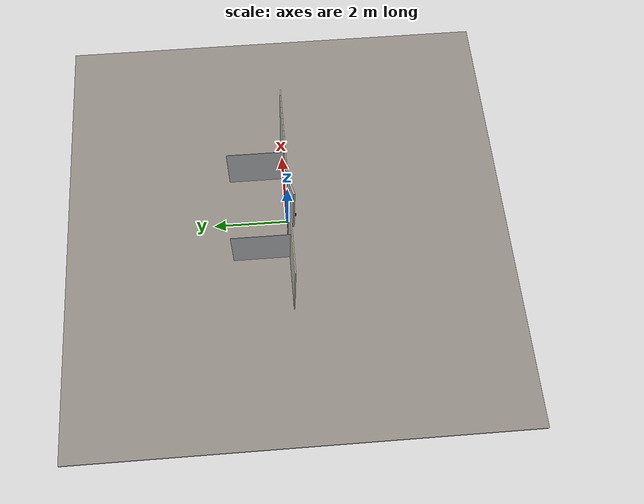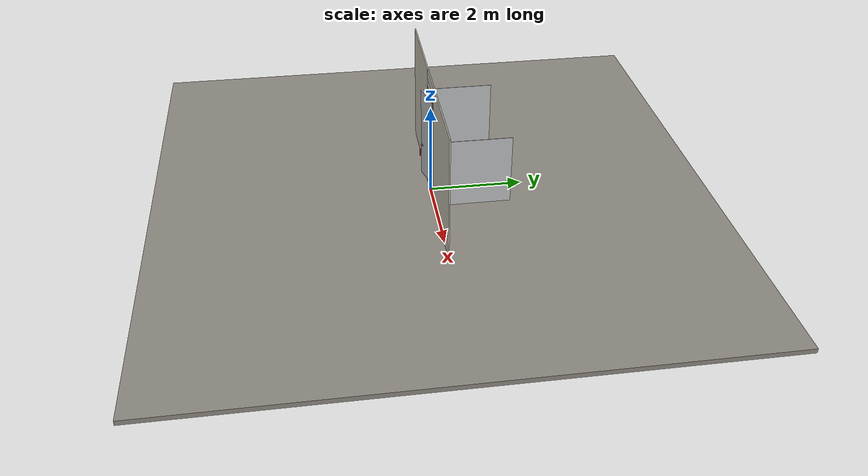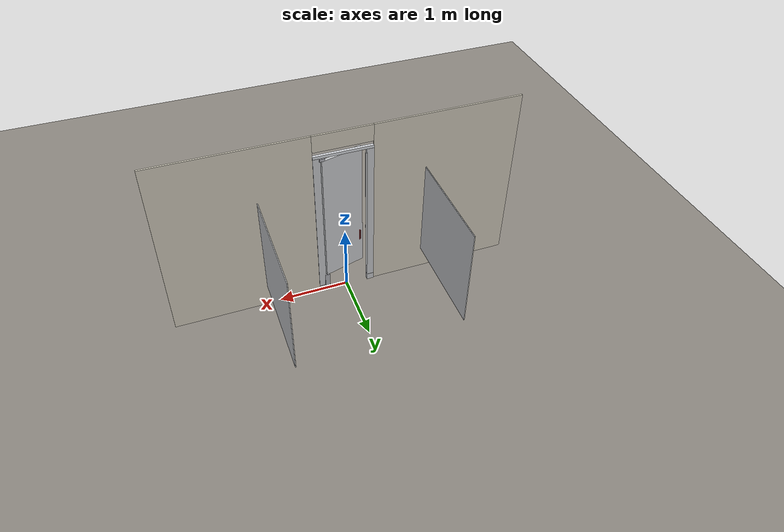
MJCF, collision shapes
<?xml version="1.0" ?>
<mujoco model="db0557_stall_full">
  <compiler angle="radian" meshdir="../../hardware" texturedir="../../textures" autolimits="true" inertiafromgeom="false"/>
  <option timestep="0.002" integrator="implicitfast" cone="elliptic" impratio="10" noslip_iterations="3">
    <flag multiccd="enable"/>
  </option>
  <size memory="16M"/>
  <default>
    <geom condim="4" solref="0.005 1" solimp="0.95 0.99 0.001"/>
    <joint solreflimit="0.005 1" solimplimit="0.95 0.99 0.001"/>
    <tendon solreflimit="0.005 1"/>
    <equality solref="0.002 1"/>
  </default>
  <visual>
    <headlight ambient="0.4 0.4 0.4" diffuse="0.7 0.7 0.7" specular="0.2 0.2 0.2"/>
    <quality shadowsize="4096"/>
    <map znear="0.01" zfar="60"/>
  </visual>
  <asset>
    <mesh name="coat_hook_d622d37ad0" file="coat_hook_d622d37ad0.obj"/>
    <mesh name="pull_1e5d69a91a" file="pull_1e5d69a91a.obj"/>
    <material name="mat_floor" rgba="0.55 0.53 0.5 1" specular="0.2" shininess="0.15" reflectance="0"/>
    <material name="mat_wall" rgba="0.78 0.76 0.7 1" specular="0.2" shininess="0.1" reflectance="0"/>
    <material name="mat_frame" rgba="0.75 0.76 0.77 1" specular="0.8" shininess="0.65" reflectance="0.4"/>
    <material name="mat_shoe" rgba="0.75 0.76 0.77 1" specular="0.8" shininess="0.65" reflectance="0.4"/>
    <material name="mat_headrail" rgba="0.8 0.81 0.83 1" specular="0.8" shininess="0.6" reflectance="0.4"/>
    <material name="mat_leaf" rgba="0.75 0.76 0.77 1" specular="0.8" shininess="0.65" reflectance="0.4"/>
    <material name="mat_op_stainless" rgba="0.75 0.76 0.77 1" specular="0.8" shininess="0.65" reflectance="0.4"/>
    <material name="mat_hinge" rgba="0.65 0.66 0.68 1" specular="0.74" shininess="0.5" reflectance="0.36"/>
    <texture name="skybox" type="skybox" builtin="gradient" rgb1="0.6 0.7 0.85" rgb2="0.9 0.92 0.95" width="256" height="256"/>
  </asset>
  <worldbody>
    <light name="sun" pos="1.5 -2.5 4" dir="-0.3 0.5 -0.8" directional="true" diffuse="0.8 0.8 0.8" specular="0.3 0.3 0.3" castshadow="true"/>
    <light name="fill" pos="-1.5 2.5 3" dir="0.3 -0.5 -0.7" directional="true" diffuse="0.35 0.35 0.4" castshadow="false"/>
    <camera name="robot_view" pos="0 -2.59375 1.77625" xyaxes="1 0 0 0 0.26963 0.962964" fovy="52"/>
    <camera name="far_view" pos="0 2.59375 1.77625" xyaxes="-1 0 0 0 -0.26963 0.962964" fovy="52"/>
    <camera name="iso" pos="-1.97125 -2.17875 2.19125" xyaxes="0.741536 -0.670913 0 0.242917 0.268487 0.932151" fovy="46"/>
    <camera name="detail_handle" pos="-0.047967 -0.882 1.13" xyaxes="0.97561 0.219512 0 -0.070934 0.315262 0.94635" fovy="38"/>
    <geom name="floor" type="box" size="6 6 0.05" pos="0 0 -0.05" material="mat_floor" group="0" contype="1" conaffinity="1" friction="0.8 0.005 0.0001" density="2400"/>
    <geom name="wall_left" type="box" size="1.0445 0.0125 1.35" pos="-1.4555 0 1.35" material="mat_wall" group="0" contype="1" conaffinity="1" friction="0.6 0.005 0.0001" density="800"/>
    <geom name="wall_right" type="box" size="1.0445 0.0125 1.35" pos="1.4555 0 1.35" material="mat_wall" group="0" contype="1" conaffinity="1" friction="0.6 0.005 0.0001" density="800"/>
    <geom name="wall_header" type="box" size="0.411 0.0125 0.125" pos="0 0 2.575" material="mat_wall" group="0" contype="1" conaffinity="1" friction="0.6 0.005 0.0001" density="800"/>
    <geom name="pilaster_l" type="box" size="0.05 0.022 1.125" pos="-0.361 0 1.225" material="mat_frame" group="0" contype="1" conaffinity="1" friction="0.6 0.005 0.0001" density="1400"/>
    <geom name="pilaster_shoe_l" type="box" size="0.05 0.027 0.05" pos="-0.361 0 0.05" material="mat_shoe" group="1" contype="0" conaffinity="0" density="7900"/>
    <geom name="pilaster_r" type="box" size="0.05 0.022 1.125" pos="0.361 0 1.225" material="mat_frame" group="0" contype="1" conaffinity="1" friction="0.6 0.005 0.0001" density="1400"/>
    <geom name="pilaster_shoe_r" type="box" size="0.05 0.027 0.05" pos="0.361 0 0.05" material="mat_shoe" group="1" contype="0" conaffinity="0" density="7900"/>
    <geom name="headrail" type="box" size="0.411 0.02 0.02" pos="0 0 2.37" material="mat_headrail" group="0" contype="1" conaffinity="1" friction="0.6 0.005 0.0001" density="2700"/>
    <geom name="partition_l" type="box" size="0.006 0.75 0.75" pos="-1.161 0.75 1.1" material="mat_frame" group="0" contype="1" conaffinity="1" friction="0.6 0.005 0.0001" density="1400"/>
    <geom name="partition_r" type="box" size="0.006 0.75 0.75" pos="1.161 0.75 1.1" material="mat_frame" group="0" contype="1" conaffinity="1" friction="0.6 0.005 0.0001" density="1400"/>
    <geom name="latch_keeper_n" type="box" size="0.02 0.0025 0.02" pos="-0.331 -0.0375 1" material="mat_op_stainless" group="0" contype="1" conaffinity="1" friction="0.6 0.005 0.0001" density="7900"/>
    <geom name="latch_keeper_p" type="box" size="0.02 0.0025 0.02" pos="-0.331 -0.0225 1" material="mat_op_stainless" group="0" contype="1" conaffinity="1" friction="0.6 0.005 0.0001" density="7900"/>
    <geom name="latch_keeper_base" type="box" size="0.02 0.01 0.003" pos="-0.331 -0.03 0.976" material="mat_op_stainless" group="0" contype="1" conaffinity="1" friction="0.6 0.005 0.0001" density="7900"/>
    <geom name="stop_strip" type="box" size="0.01 0.006 1" pos="-0.301 0.028 1.3" material="mat_frame" group="0" contype="1" conaffinity="1" friction="0.6 0.005 0.0001" density="1400"/>
    <geom name="pivot_bottom_socket" type="box" size="0.035 0.035 0.154" pos="0.291 0 0.144" material="mat_hinge" group="1" contype="0" conaffinity="0" density="7850"/>
    <geom name="pivot_top_bracket" type="box" size="0.035 0.035 0.021" pos="0.291 0 2.329" material="mat_hinge" group="1" contype="0" conaffinity="0" density="7850"/>
    <site name="approach_point" pos="0 -1.2 0" quat="1 0 0 0" size="0.05" rgba="0.2 0.9 0.2 0.5" group="4"/>
    <site name="goal_point" pos="0 1 0" quat="1 0 0 0" size="0.05" rgba="0.2 0.9 0.2 0.5" group="4"/>
    <site name="door_plane_center" pos="0 0 1" quat="1 0 0 0" size="0.02" rgba="0.2 0.9 0.2 0.5" group="4"/>
    <body name="leaf_riser" pos="0.311 0 0">
      <inertial pos="0 0 0" mass="0.01" quat="1 0 0 0" diaginertia="0.000001 0.000001 0.000001"/>
      <joint name="leaf_rise" type="slide" axis="0 0 1" limited="true" range="0 0.03" damping="1" armature="0.5" ref="0.001667"/>
      <body name="leaf" pos="0 0 0">
        <inertial pos="-0.311189 -0.069941 1.288138" mass="31.092813" quat="0.43322 0.563186 -0.427375 0.55901" diaginertia="0.994973017 10.315631026 11.290384238"/>
        <joint name="leaf_hinge" type="hinge" axis="0 0 1" pos="-0.05 0 0" limited="true" range="0 1.919862" damping="0.100011" frictionloss="0.219937" armature="0.02" ref="0.261799"/>
        <geom name="leaf_slab" type="box" size="0.305 0.022 1" pos="-0.304972 -0.06832 1.3" quat="0.991445 0 0 0.130526" material="mat_leaf" group="0" contype="1" conaffinity="1" friction="0.35 0.005 0.0001" density="1"/>
        <geom name="pull_n" type="mesh" mesh="pull_1e5d69a91a" pos="-0.516612 -0.147804 0.85" quat="-0.092296 0.092296 -0.701057 0.701057" material="mat_op_stainless" group="1" contype="0" conaffinity="0" density="3000"/>
        <geom name="pull_col_n" type="capsule" size="0.0095 0.08" pos="-0.501083 -0.20576 0.85" quat="0.991445 0 0 0.130526" material="mat_op_stainless" group="3" contype="1" conaffinity="1" rgba="0.8 0.3 0.3 0.25" friction="0.7 0.01 0.0001" density="3000"/>
        <geom name="pull_p" type="mesh" mesh="pull_1e5d69a91a" pos="-0.528 -0.105304 0.85" quat="-0.092296 -0.092296 0.701057 0.701057" material="mat_op_stainless" group="1" contype="0" conaffinity="0" density="3000"/>
        <geom name="pull_col_p" type="capsule" size="0.0095 0.08" pos="-0.543529 -0.047348 0.85" quat="0.991445 0 0 0.130526" material="mat_op_stainless" group="3" contype="1" conaffinity="1" rgba="0.8 0.3 0.3 0.25" friction="0.7 0.01 0.0001" density="3000"/>
        <geom name="slide_latch_plate" type="box" size="0.048 0.001 0.022" pos="-0.55016 -0.157829 1" quat="0.991445 0 0 0.130526" material="mat_op_stainless" group="1" contype="0" conaffinity="0" density="7900"/>
        <geom name="slide_latch_guide_leg_n" type="box" size="0.005 0.0015 0.009" pos="-0.568374 -0.170992 1.0165" quat="-0.092296 0.092296 -0.701057 0.701057" material="mat_op_stainless" group="1" contype="0" conaffinity="0" density="7800"/>
        <geom name="slide_latch_guide_leg_p" type="box" size="0.005 0.0015 0.009" pos="-0.568374 -0.170992 0.9835" quat="-0.092296 0.092296 -0.701057 0.701057" material="mat_op_stainless" group="1" contype="0" conaffinity="0" density="7800"/>
        <geom name="slide_latch_guide_bridge" type="box" size="0.005 0.018 0.0015" pos="-0.566433 -0.178236 1" quat="-0.092296 0.092296 -0.701057 0.701057" material="mat_op_stainless" group="1" contype="0" conaffinity="0" density="7800"/>
        <geom name="coat_hook" type="mesh" mesh="coat_hook_d622d37ad0" pos="-0.307801 -0.046301 2.15" quat="-0.092296 -0.092296 0.701057 0.701057" material="mat_op_stainless" group="2" contype="0" conaffinity="0" density="7000"/>
        <geom name="pivot_bottom" type="cylinder" size="0.014 0.004" pos="-0.021022 0.007765 0.295" quat="0.991445 0 0 0.130526" material="mat_hinge" group="1" contype="0" conaffinity="0" density="7850"/>
        <geom name="pivot_top" type="cylinder" size="0.014 0.004" pos="-0.021022 0.007765 2.304" quat="0.991445 0 0 0.130526" material="mat_hinge" group="1" contype="0" conaffinity="0" density="7850"/>
        <site name="pull_grip_n" pos="-0.501083 -0.20576 0.85" quat="0.991445 0 0 0.130526" size="0.012" rgba="0.2 0.9 0.2 0.5" group="4"/>
        <site name="pull_grip_p" pos="-0.543529 -0.047348 0.85" quat="0.991445 0 0 0.130526" size="0.012" rgba="0.2 0.9 0.2 0.5" group="4"/>
        <body name="slide_latch" pos="-0.543519 -0.163296 1" quat="0.991445 0 0 0.130526">
          <inertial pos="0.004044 -0.001618 0" mass="0.140251" quat="0.027514 0.027514 0.706571 0.706571" diaginertia="0.000009989 0.000084063 0.000085949"/>
          <joint name="slide_latch_slide" type="slide" axis="1 0 0" limited="true" range="0 0.03" damping="0.5" frictionloss="0.5" armature="0.1" ref="0.03"/>
          <geom name="slide_latch_bar" type="box" size="0.04 0.004 0.012" pos="0 0 0" material="mat_op_stainless" group="0" contype="1" conaffinity="1" friction="0.6 0.005 0.0001" density="7900"/>
          <geom name="slide_latch_knob" type="capsule" size="0.005 0.012" pos="0.03 -0.012 0" quat="0.707107 0.707107 0 0" material="mat_op_stainless" group="0" contype="1" conaffinity="1" friction="0.6 0.005 0.0001" density="7850"/>
          <site name="grip_latch" pos="0.03 -0.03 0" quat="1 0 0 0" size="0.01" rgba="0.2 0.9 0.2 0.5" group="4"/>
        </body>
      </body>
    </body>
  </worldbody>
  <equality>
    <joint name="leaf_rise_couple" joint1="leaf_rise" joint2="leaf_hinge" polycoef="0 0.006366 0 0 0" active="true"/>
  </equality>
  <sensor>
    <jointpos name="leaf_hinge_pos" joint="leaf_hinge"/>
    <jointvel name="leaf_hinge_vel" joint="leaf_hinge"/>
    <jointpos name="slide_latch_slide_pos" joint="slide_latch_slide"/>
    <jointvel name="slide_latch_slide_vel" joint="slide_latch_slide"/>
  </sensor>
</mujoco>
